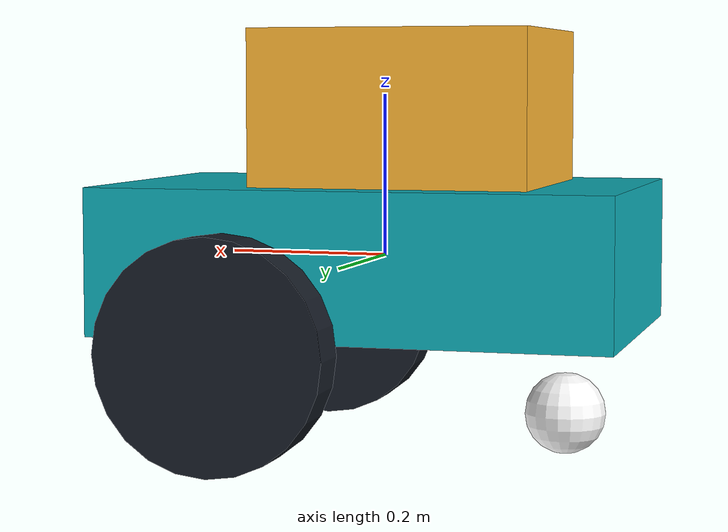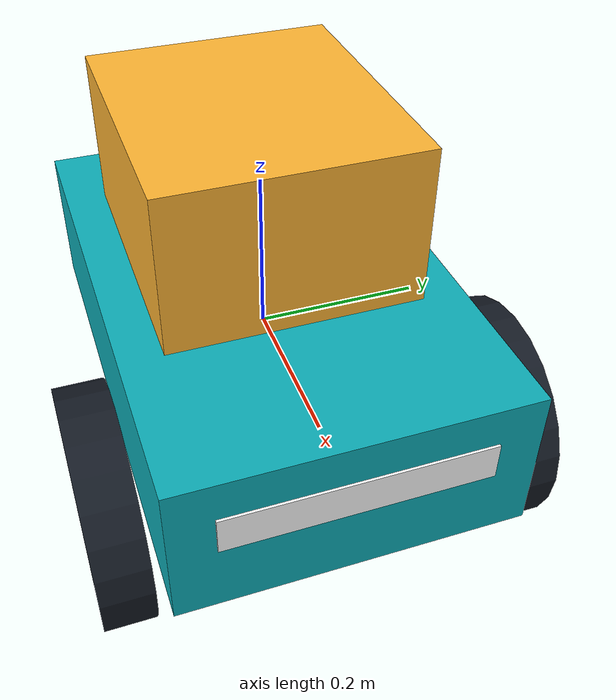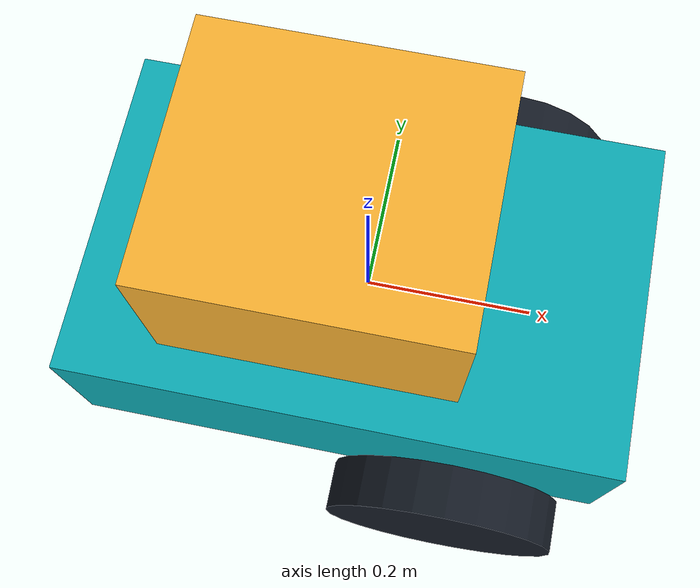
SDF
<sdf version='1.11'>
  <model name='delivery_rover'>
    <link name='base_link'>
      <inertial>
        <pose>-0.0044444444444444436 0 0.020555555555555549 0 0 0</pose>
        <mass>9</mass>
        <inertia>
          <ixx>0.16919722222222219</ixx>
          <ixy>0</ixy>
          <ixz>0.0065777777777777779</ixz>
          <iyy>0.3391527777777778</iyy>
          <iyz>0</iyz>
          <izz>0.39828888888888903</izz>
        </inertia>
      </inertial>
      <collision name='base_link_collision'>
        <pose>0 0 0 0 0 0</pose>
        <geometry>
          <box>
            <size>0.64000000000000001 0.40000000000000002 0.17999999999999999</size>
          </box>
        </geometry>
      </collision>
      <collision name='base_link_fixed_joint_lump__parcel_tray_collision_1'>
        <pose>-0.040000000000000001 0 0.185 0 0 0</pose>
        <geometry>
          <box>
            <size>0.34000000000000002 0.29999999999999999 0.19</size>
          </box>
        </geometry>
      </collision>
      <visual name='base_link_visual'>
        <pose>0 0 0 0 0 0</pose>
        <geometry>
          <box>
            <size>0.64000000000000001 0.40000000000000002 0.17999999999999999</size>
          </box>
        </geometry>
        <material>
          <diffuse>0.049999997 0.6875 0.724999964 1</diffuse>
          <ambient>0.049999997 0.6875 0.724999964 1</ambient>
        </material>
      </visual>
      <visual name='base_link_fixed_joint_lump__front_stripe_visual_1'>
        <pose>0.32100000000000001 0 0.02 0 0 0</pose>
        <geometry>
          <box>
            <size>0.0040000000000000001 0.29999999999999999 0.044999999999999998</size>
          </box>
        </geometry>
        <material>
          <diffuse>1 1 1 1</diffuse>
          <ambient>1 1 1 1</ambient>
        </material>
      </visual>
      <visual name='base_link_fixed_joint_lump__parcel_tray_visual_2'>
        <pose>-0.040000000000000001 0 0.185 0 0 0</pose>
        <geometry>
          <box>
            <size>0.34000000000000002 0.29999999999999999 0.19</size>
          </box>
        </geometry>
        <material>
          <diffuse>1 0.712499976 0.199999988 1</diffuse>
          <ambient>1 0.712499976 0.199999988 1</ambient>
        </material>
      </visual>
      <sensor name='rgb_camera' type='camera'>
        <topic>/sensors/camera/image</topic>
        <always_on>true</always_on>
        <update_rate>10</update_rate>
        <camera>
          <camera_info_topic>/sensors/camera/camera_info</camera_info_topic>
          <optical_frame_id>camera_optical_frame</optical_frame_id>
          <horizontal_fov>1.0471975512</horizontal_fov>
          <image>
            <width>320</width>
            <height>240</height>
            <format>R8G8B8</format>
          </image>
          <clip>
            <near>0.050000000000000003</near>
            <far>12</far>
          </clip>
          <noise>
            <type>gaussian</type>
            <mean>0</mean>
            <stddev>0.0070000000000000001</stddev>
          </noise>
        </camera>
        <pose>0.33000000000000002 0 0.16 0 0 0</pose>
        <gz_frame_id>camera_optical_frame</gz_frame_id>
      </sensor>
      <sensor name='imu' type='imu'>
        <topic>/sensors/imu_native</topic>
        <always_on>true</always_on>
        <update_rate>100</update_rate>
        <pose>0 0 0 0 0 0</pose>
        <gz_frame_id>imu_link</gz_frame_id>
        <imu/>
      </sensor>
      <sensor name='lidar' type='gpu_lidar'>
        <topic>/sensors/lidar</topic>
        <always_on>true</always_on>
        <update_rate>10</update_rate>
        <lidar>
          <scan>
            <horizontal>
              <samples>361</samples>
              <resolution>1</resolution>
              <min_angle>-3.1415926535897931</min_angle>
              <max_angle>3.1415926535897931</max_angle>
            </horizontal>
          </scan>
          <range>
            <min>0.12</min>
            <max>8</max>
            <resolution>0.01</resolution>
          </range>
          <noise>
            <type>gaussian</type>
            <mean>0</mean>
            <stddev>0.01</stddev>
          </noise>
        </lidar>
        <pose>0.20000000000000001 0 0.34000000000000002 0 0 0</pose>
        <gz_frame_id>lidar_link</gz_frame_id>
      </sensor>
    </link>
    <joint name='left_wheel_joint' type='revolute'>
      <pose relative_to='base_link'>0.14000000000000001 0.23999999999999999 -0.10000000000000001 0 0 0</pose>
      <parent>base_link</parent>
      <child>left_wheel</child>
      <axis>
        <xyz>0 1 0</xyz>
        <limit>
          <effort>10</effort>
          <velocity>20</velocity>
          <lower>-inf</lower>
          <upper>inf</upper>
        </limit>
        <dynamics>
          <damping>0.02</damping>
          <friction>0</friction>
          <spring_reference>0</spring_reference>
          <spring_stiffness>0</spring_stiffness>
        </dynamics>
      </axis>
    </joint>
    <link name='left_wheel'>
      <pose relative_to='left_wheel_joint'>0 0 0 0 0 0</pose>
      <inertial>
        <pose>0 0 0 0 0 0</pose>
        <mass>0.59999999999999998</mass>
        <inertia>
          <ixx>0.0031200000000000008</ixx>
          <ixy>0</ixy>
          <ixz>0</ixz>
          <iyy>0.0058800000000000007</iyy>
          <iyz>0</iyz>
          <izz>0.0031200000000000008</izz>
        </inertia>
      </inertial>
      <collision name='left_wheel_collision'>
        <pose>0 0 0 1.5707963267948959 0 0</pose>
        <geometry>
          <cylinder>
            <length>0.059999999999999998</length>
            <radius>0.14000000000000001</radius>
          </cylinder>
        </geometry>
        <surface>
          <contact>
            <ode/>
          </contact>
          <friction>
            <ode>
              <mu>1</mu>
              <mu2>1</mu2>
            </ode>
          </friction>
        </surface>
      </collision>
      <visual name='left_wheel_visual'>
        <pose>0 0 0 1.5707963267948959 0 0</pose>
        <geometry>
          <cylinder>
            <length>0.059999999999999998</length>
            <radius>0.14000000000000001</radius>
          </cylinder>
        </geometry>
        <material>
          <diffuse>0.0874999985 0.112500004 0.149999991 1</diffuse>
          <ambient>0.0874999985 0.112500004 0.149999991 1</ambient>
        </material>
      </visual>
    </link>
    <joint name='rear_support_joint' type='fixed'>
      <pose relative_to='base_link'>-0.23000000000000001 0 -0.19 0 0 0</pose>
      <parent>base_link</parent>
      <child>rear_support</child>
      <axis>
        <dynamics>
          <spring_reference>0</spring_reference>
          <spring_stiffness>0</spring_stiffness>
        </dynamics>
        <xyz>0 0 1</xyz>
        <limit>
          <lower>-inf</lower>
          <upper>inf</upper>
        </limit>
      </axis>
      <physics>
        <ode>
          <limit>
            <cfm>0</cfm>
            <erp>0.20000000000000001</erp>
          </limit>
        </ode>
      </physics>
    </joint>
    <link name='rear_support'>
      <pose relative_to='rear_support_joint'>0 0 0 0 0 0</pose>
      <inertial>
        <pose>0 0 0 0 0 0</pose>
        <mass>0.10000000000000001</mass>
        <inertia>
          <ixx>0.0001</ixx>
          <ixy>0</ixy>
          <ixz>0</ixz>
          <iyy>0.0001</iyy>
          <iyz>0</iyz>
          <izz>0.0001</izz>
        </inertia>
      </inertial>
      <collision name='rear_support_collision'>
        <pose>0 0 0 0 0 0</pose>
        <geometry>
          <sphere>
            <radius>0.050000000000000003</radius>
          </sphere>
        </geometry>
        <surface>
          <contact>
            <ode/>
          </contact>
          <friction>
            <ode>
              <mu>0</mu>
              <mu2>0</mu2>
            </ode>
          </friction>
        </surface>
      </collision>
      <visual name='rear_support_visual'>
        <pose>0 0 0 0 0 0</pose>
        <geometry>
          <sphere>
            <radius>0.050000000000000003</radius>
          </sphere>
        </geometry>
        <material>
          <diffuse>1 1 1 1</diffuse>
          <ambient>1 1 1 1</ambient>
        </material>
      </visual>
    </link>
    <joint name='right_wheel_joint' type='revolute'>
      <pose relative_to='base_link'>0.14000000000000001 -0.23999999999999999 -0.10000000000000001 0 0 0</pose>
      <parent>base_link</parent>
      <child>right_wheel</child>
      <axis>
        <xyz>0 1 0</xyz>
        <limit>
          <effort>10</effort>
          <velocity>20</velocity>
          <lower>-inf</lower>
          <upper>inf</upper>
        </limit>
        <dynamics>
          <damping>0.02</damping>
          <friction>0</friction>
          <spring_reference>0</spring_reference>
          <spring_stiffness>0</spring_stiffness>
        </dynamics>
      </axis>
    </joint>
    <link name='right_wheel'>
      <pose relative_to='right_wheel_joint'>0 0 0 0 0 0</pose>
      <inertial>
        <pose>0 0 0 0 0 0</pose>
        <mass>0.59999999999999998</mass>
        <inertia>
          <ixx>0.0031200000000000008</ixx>
          <ixy>0</ixy>
          <ixz>0</ixz>
          <iyy>0.0058800000000000007</iyy>
          <iyz>0</iyz>
          <izz>0.0031200000000000008</izz>
        </inertia>
      </inertial>
      <collision name='right_wheel_collision'>
        <pose>0 0 0 1.5707963267948959 0 0</pose>
        <geometry>
          <cylinder>
            <length>0.059999999999999998</length>
            <radius>0.14000000000000001</radius>
          </cylinder>
        </geometry>
        <surface>
          <contact>
            <ode/>
          </contact>
          <friction>
            <ode>
              <mu>1</mu>
              <mu2>1</mu2>
            </ode>
          </friction>
        </surface>
      </collision>
      <visual name='right_wheel_visual'>
        <pose>0 0 0 1.5707963267948959 0 0</pose>
        <geometry>
          <cylinder>
            <length>0.059999999999999998</length>
            <radius>0.14000000000000001</radius>
          </cylinder>
        </geometry>
        <material>
          <diffuse>0.0874999985 0.112500004 0.149999991 1</diffuse>
          <ambient>0.0874999985 0.112500004 0.149999991 1</ambient>
        </material>
      </visual>
    </link>
    <plugin name='gz::sim::systems::DiffDrive' filename='gz-sim-diff-drive-system'>
      <left_joint>left_wheel_joint</left_joint>
      <right_joint>right_wheel_joint</right_joint>
      <wheel_separation>0.48</wheel_separation>
      <wheel_radius>0.14</wheel_radius>
      <topic>/model/delivery_rover/cmd_vel</topic>
      <odom_topic>/model/delivery_rover/unused_native_odom</odom_topic>
      <tf_topic>/model/delivery_rover/unused_native_tf</tf_topic>
    </plugin>
    <plugin name='gz::sim::systems::JointStatePublisher' filename='gz-sim-joint-state-publisher-system'>
      <topic>/model/delivery_rover/joint_state</topic>
      <joint_name>left_wheel_joint</joint_name>
      <joint_name>right_wheel_joint</joint_name>
      <update_rate>50</update_rate>
    </plugin>
    <frame name='camera_optical_joint' attached_to='camera_link'>
      <pose>0 0 0 -1.5707963267948959 -5.5511151231257827e-17 -1.5707963267948959</pose>
    </frame>
    <frame name='camera_optical_frame' attached_to='camera_optical_joint'>
      <pose>0 0 0 0 0 0</pose>
    </frame>
    <frame name='camera_link_joint' attached_to='base_link'>
      <pose>0.33000000000000002 0 0.16 0 0 0</pose>
    </frame>
    <frame name='camera_link' attached_to='camera_link_joint'>
      <pose>0 0 0 0 0 0</pose>
    </frame>
    <frame name='imu_link_joint' attached_to='base_link'>
      <pose>0 0 0 0 0 0</pose>
    </frame>
    <frame name='imu_link' attached_to='imu_link_joint'>
      <pose>0 0 0 0 0 0</pose>
    </frame>
    <frame name='lidar_link_joint' attached_to='base_link'>
      <pose>0.20000000000000001 0 0.34000000000000002 0 0 0</pose>
    </frame>
    <frame name='lidar_link' attached_to='lidar_link_joint'>
      <pose>0 0 0 0 0 0</pose>
    </frame>
    <frame name='parcel_tray_joint' attached_to='base_link'>
      <pose>-0.040000000000000001 0 0.185 0 0 0</pose>
    </frame>
    <frame name='parcel_tray' attached_to='parcel_tray_joint'>
      <pose>0 0 0 0 0 0</pose>
    </frame>
  </model>
</sdf>
